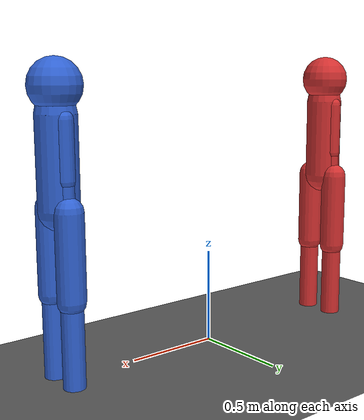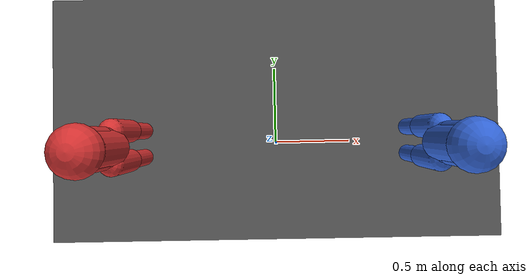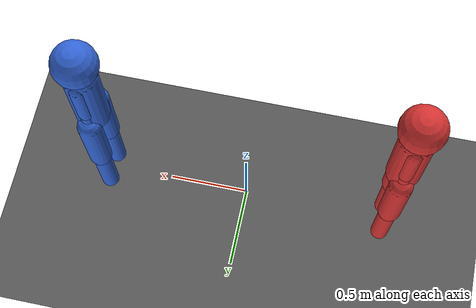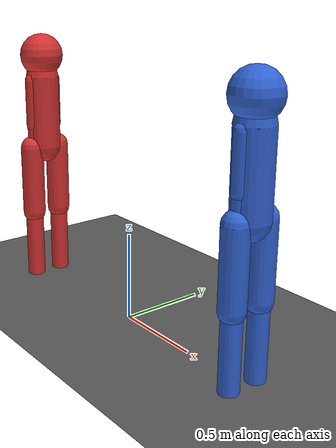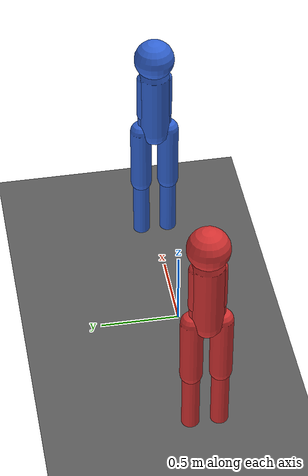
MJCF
<mujoco model="fighter3d">
  <compiler angle="degree"/>
  <option gravity="0 0 -9.81" timestep="0.005"/>

  <visual>
    <headlight ambient="0.4 0.4 0.4"/>
  </visual>

  <asset>
    <texture type="skybox" builtin="gradient" rgb1="0.6 0.7 0.9" rgb2="0.1 0.1 0.2" width="256" height="256"/>
    <texture name="grid" type="2d" builtin="checker" rgb1="0.3 0.3 0.3" rgb2="0.4 0.4 0.4" width="300" height="300"/>
    <material name="grid" texture="grid" texrepeat="8 8" reflectance="0.1"/>
  </asset>

  <worldbody>
    <light pos="0 -2 3" dir="0 0.5 -1" diffuse="0.8 0.8 0.8"/>
    <geom name="floor" type="plane" size="6 6 0.1" material="grid" friction="1.0 0.01 0.01"/>
    <camera name="side" pos="0 -4.5 1.1" xyaxes="1 0 0 0 0 1"/>
    <camera name="quarter" pos="-3 -3.5 2.2" xyaxes="0.7 -0.7 0 0.3 0.3 0.9"/>

    <body name="a_torso" pos="-0.9 0.0 1.06">
      <joint name="a_root_x" type="slide" axis="1 0 0" limited="false" damping="0.5"/>
      <joint name="a_root_y" type="slide" axis="0 1 0" limited="false" damping="0.5"/>
      <joint name="a_root_z" type="slide" axis="0 0 1" limited="false" damping="0.5"/>
      <joint name="a_root_orient" type="ball" damping="0.5"/>
      <geom name="a_torso" type="capsule" fromto="0 0 -0.22 0 0 0.22" size="0.10" rgba="0.85 0.2 0.2 1"/>

      <body name="a_head" pos="0 0 0.22">
        <joint name="a_head" type="hinge" axis="0 1 0" range="-40 40" damping="1" armature="0.01"/>
        <geom name="a_head" type="sphere" size="0.13" pos="0 0 0.13" rgba="0.85 0.2 0.2 1"/>
      </body>

      <body name="a_upper_arm_r" pos="0 -0.07 0.20">
        <joint name="a_shoulder_r" type="hinge" axis="0 1 0" range="-160 160" damping="1" armature="0.01"/>
        <geom name="a_upper_arm_r" type="capsule" fromto="0 0 0 0 0 -0.28" size="0.045" rgba="0.85 0.2 0.2 1"/>
        <body name="a_forearm_r" pos="0 0 -0.28">
          <joint name="a_elbow_r" type="hinge" axis="0 1 0" range="-150 0" damping="1" armature="0.01"/>
          <geom name="a_forearm_r" type="capsule" fromto="0 0 0 0 0 -0.25" size="0.04" rgba="0.85 0.2 0.2 1"/>
        </body>
      </body>

      <body name="a_upper_arm_l" pos="0 0.07 0.20">
        <joint name="a_shoulder_l" type="hinge" axis="0 1 0" range="-160 160" damping="1" armature="0.01"/>
        <geom name="a_upper_arm_l" type="capsule" fromto="0 0 0 0 0 -0.28" size="0.045" rgba="0.85 0.2 0.2 1"/>
        <body name="a_forearm_l" pos="0 0 -0.28">
          <joint name="a_elbow_l" type="hinge" axis="0 1 0" range="-150 0" damping="1" armature="0.01"/>
          <geom name="a_forearm_l" type="capsule" fromto="0 0 0 0 0 -0.25" size="0.04" rgba="0.85 0.2 0.2 1"/>
        </body>
      </body>

      <body name="a_thigh_r" pos="0 -0.09 -0.22">
        <joint name="a_hip_r" type="hinge" axis="0 1 0" range="-120 90" damping="2" armature="0.02"/>
        <geom name="a_thigh_r" type="capsule" fromto="0 0 0 0 0 -0.42" size="0.07" rgba="0.85 0.2 0.2 1"/>
        <body name="a_shin_r" pos="0 0 -0.42">
          <joint name="a_knee_r" type="hinge" axis="0 1 0" range="-140 0" damping="2" armature="0.02"/>
          <geom name="a_shin_r" type="capsule" fromto="0 0 0 0 0 -0.42" size="0.055" rgba="0.85 0.2 0.2 1"/>
        </body>
      </body>

      <body name="a_thigh_l" pos="0 0.09 -0.22">
        <joint name="a_hip_l" type="hinge" axis="0 1 0" range="-120 90" damping="2" armature="0.02"/>
        <geom name="a_thigh_l" type="capsule" fromto="0 0 0 0 0 -0.42" size="0.07" rgba="0.85 0.2 0.2 1"/>
        <body name="a_shin_l" pos="0 0 -0.42">
          <joint name="a_knee_l" type="hinge" axis="0 1 0" range="-140 0" damping="2" armature="0.02"/>
          <geom name="a_shin_l" type="capsule" fromto="0 0 0 0 0 -0.42" size="0.055" rgba="0.85 0.2 0.2 1"/>
        </body>
      </body>
    </body>

    <body name="b_torso" pos="0.9 0.0 1.06">
      <joint name="b_root_x" type="slide" axis="1 0 0" limited="false" damping="0.5"/>
      <joint name="b_root_y" type="slide" axis="0 1 0" limited="false" damping="0.5"/>
      <joint name="b_root_z" type="slide" axis="0 0 1" limited="false" damping="0.5"/>
      <joint name="b_root_orient" type="ball" damping="0.5"/>
      <geom name="b_torso" type="capsule" fromto="0 0 -0.22 0 0 0.22" size="0.10" rgba="0.2 0.4 0.85 1"/>

      <body name="b_head" pos="0 0 0.22">
        <joint name="b_head" type="hinge" axis="0 1 0" range="-40 40" damping="1" armature="0.01"/>
        <geom name="b_head" type="sphere" size="0.13" pos="0 0 0.13" rgba="0.2 0.4 0.85 1"/>
      </body>

      <body name="b_upper_arm_r" pos="0 -0.07 0.20">
        <joint name="b_shoulder_r" type="hinge" axis="0 1 0" range="-160 160" damping="1" armature="0.01"/>
        <geom name="b_upper_arm_r" type="capsule" fromto="0 0 0 0 0 -0.28" size="0.045" rgba="0.2 0.4 0.85 1"/>
        <body name="b_forearm_r" pos="0 0 -0.28">
          <joint name="b_elbow_r" type="hinge" axis="0 1 0" range="-150 0" damping="1" armature="0.01"/>
          <geom name="b_forearm_r" type="capsule" fromto="0 0 0 0 0 -0.25" size="0.04" rgba="0.2 0.4 0.85 1"/>
        </body>
      </body>

      <body name="b_upper_arm_l" pos="0 0.07 0.20">
        <joint name="b_shoulder_l" type="hinge" axis="0 1 0" range="-160 160" damping="1" armature="0.01"/>
        <geom name="b_upper_arm_l" type="capsule" fromto="0 0 0 0 0 -0.28" size="0.045" rgba="0.2 0.4 0.85 1"/>
        <body name="b_forearm_l" pos="0 0 -0.28">
          <joint name="b_elbow_l" type="hinge" axis="0 1 0" range="-150 0" damping="1" armature="0.01"/>
          <geom name="b_forearm_l" type="capsule" fromto="0 0 0 0 0 -0.25" size="0.04" rgba="0.2 0.4 0.85 1"/>
        </body>
      </body>

      <body name="b_thigh_r" pos="0 -0.09 -0.22">
        <joint name="b_hip_r" type="hinge" axis="0 1 0" range="-120 90" damping="2" armature="0.02"/>
        <geom name="b_thigh_r" type="capsule" fromto="0 0 0 0 0 -0.42" size="0.07" rgba="0.2 0.4 0.85 1"/>
        <body name="b_shin_r" pos="0 0 -0.42">
          <joint name="b_knee_r" type="hinge" axis="0 1 0" range="-140 0" damping="2" armature="0.02"/>
          <geom name="b_shin_r" type="capsule" fromto="0 0 0 0 0 -0.42" size="0.055" rgba="0.2 0.4 0.85 1"/>
        </body>
      </body>

      <body name="b_thigh_l" pos="0 0.09 -0.22">
        <joint name="b_hip_l" type="hinge" axis="0 1 0" range="-120 90" damping="2" armature="0.02"/>
        <geom name="b_thigh_l" type="capsule" fromto="0 0 0 0 0 -0.42" size="0.07" rgba="0.2 0.4 0.85 1"/>
        <body name="b_shin_l" pos="0 0 -0.42">
          <joint name="b_knee_l" type="hinge" axis="0 1 0" range="-140 0" damping="2" armature="0.02"/>
          <geom name="b_shin_l" type="capsule" fromto="0 0 0 0 0 -0.42" size="0.055" rgba="0.2 0.4 0.85 1"/>
        </body>
      </body>
    </body>

  </worldbody>

  <actuator>
    <motor name="a_root_x" joint="a_root_x" gear="90" ctrlrange="-1 1"/>
    <motor name="a_root_y" joint="a_root_y" gear="90" ctrlrange="-1 1"/>
    <motor name="a_head" joint="a_head" gear="20" ctrlrange="-1 1"/>
    <motor name="a_shoulder_r" joint="a_shoulder_r" gear="45" ctrlrange="-1 1"/>
    <motor name="a_elbow_r" joint="a_elbow_r" gear="30" ctrlrange="-1 1"/>
    <motor name="a_shoulder_l" joint="a_shoulder_l" gear="45" ctrlrange="-1 1"/>
    <motor name="a_elbow_l" joint="a_elbow_l" gear="30" ctrlrange="-1 1"/>
    <motor name="a_hip_r" joint="a_hip_r" gear="60" ctrlrange="-1 1"/>
    <motor name="a_knee_r" joint="a_knee_r" gear="40" ctrlrange="-1 1"/>
    <motor name="a_hip_l" joint="a_hip_l" gear="60" ctrlrange="-1 1"/>
    <motor name="a_knee_l" joint="a_knee_l" gear="40" ctrlrange="-1 1"/>
    <motor name="b_root_x" joint="b_root_x" gear="90" ctrlrange="-1 1"/>
    <motor name="b_root_y" joint="b_root_y" gear="90" ctrlrange="-1 1"/>
    <motor name="b_head" joint="b_head" gear="20" ctrlrange="-1 1"/>
    <motor name="b_shoulder_r" joint="b_shoulder_r" gear="45" ctrlrange="-1 1"/>
    <motor name="b_elbow_r" joint="b_elbow_r" gear="30" ctrlrange="-1 1"/>
    <motor name="b_shoulder_l" joint="b_shoulder_l" gear="45" ctrlrange="-1 1"/>
    <motor name="b_elbow_l" joint="b_elbow_l" gear="30" ctrlrange="-1 1"/>
    <motor name="b_hip_r" joint="b_hip_r" gear="60" ctrlrange="-1 1"/>
    <motor name="b_knee_r" joint="b_knee_r" gear="40" ctrlrange="-1 1"/>
    <motor name="b_hip_l" joint="b_hip_l" gear="60" ctrlrange="-1 1"/>
    <motor name="b_knee_l" joint="b_knee_l" gear="40" ctrlrange="-1 1"/>
  </actuator>
</mujoco>
